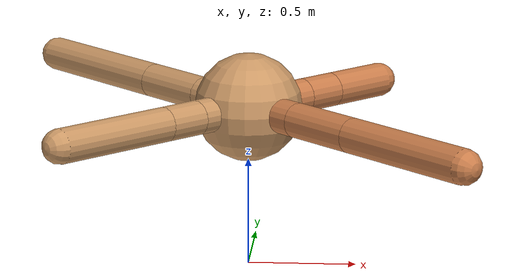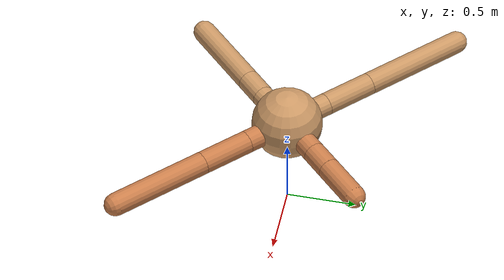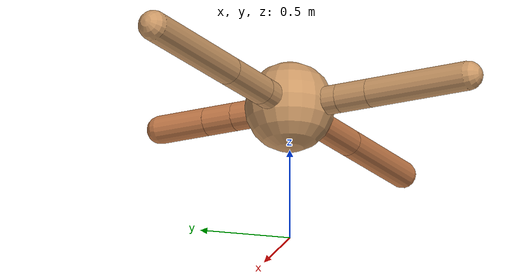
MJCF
<mujoco model="ant">
  <compiler angle="degree" coordinate="local" inertiafromgeom="true" />
  <option integrator="RK4" timestep="0.01" />
  <custom>
    <numeric data="0.0 0.0 0.55 1.0 0.0 0.0 0.0 0.0 1.0 0.0 -1.0 0.0 -1.0 0.0 1.0" name="init_qpos" />
  </custom>
  <default>
    <joint armature="1" damping="1" limited="true" />
    <geom conaffinity="0" condim="3" density="5.0" friction="1.5 0.1 0.1" margin="0.01" rgba="0.8 0.6 0.4 1" />
  </default>
  <worldbody>
    <body name="torso" pos="0 0 0.75">
      <geom name="torso_geom" pos="0 0 0" size="0.25" type="sphere" />

      <body name="front_left_leg" pos="0 0 0">
        <geom fromto="0.0 0.0 0.0 0.23877968167385336 0.23877968167385336 0.0" name="aux_1_geom" size="0.08" type="capsule" rgba=".8 .5 .3 1" />
        <body name="aux_1" pos="0.23877968167385336 0.23877968167385336 0.0">
          <joint axis="0 0 1" name="hip_1" pos="0.0 0.0 0.0" range="-40 40" type="hinge" />
          <geom fromto="0.0 0.0 0.0 0.12686233950273215 0.12686233950273215 0.0" name="left_leg_geom" size="0.08" type="capsule" rgba=".8 .5 .3 1" />
          <body pos="0.12686233950273215 0.12686233950273215 0.0" name="front_left_foot">
            <joint axis="-1 1 0" name="ankle_1" pos="0.0 0.0 0.0" range="30 100" type="hinge" />
            <geom fromto="0.0 0.0 0.0 0.21779591920244964 0.21779591920244964 0.0" name="left_ankle_geom" size="0.08" type="capsule" rgba=".8 .5 .3 1" />
          </body>
        </body>
      </body>
      <body name="front_right_leg" pos="0 0 0">
        <geom fromto="0.0 0.0 0.0 -0.2298409185227416 0.2298409185227416 0.0" name="aux_2_geom" size="0.08" type="capsule" />
        <body name="aux_2" pos="-0.2298409185227416 0.2298409185227416 0.0">
          <joint axis="0 0 1" name="hip_2" pos="0.0 0.0 0.0" range="-40 40" type="hinge" />
          <geom fromto="0.0 0.0 0.0 -0.25766902019681287 0.25766902019681287 0.0" name="right_leg_geom" size="0.08" type="capsule" />
          <body pos="-0.25766902019681287 0.25766902019681287 0.0" name="front_right_foot">
            <joint axis="1 1 0" name="ankle_2" pos="0.0 0.0 0.0" range="-100 -30" type="hinge" />
            <geom fromto="0.0 0.0 0.0 -0.5400794514735769 0.5400794514735769 0.0" name="right_ankle_geom" size="0.08" type="capsule" />
          </body>
        </body>
      </body>
      <body name="left_back_leg" pos="0 0 0">
        <geom fromto="0.0 0.0 0.0 -0.21997824215613795 -0.21997824215613795 0.0" name="aux_3_geom" size="0.08" type="capsule" />
        <body name="aux_3" pos="-0.21997824215613795 -0.21997824215613795 0.0">
          <joint axis="0 0 1" name="hip_3" pos="0.0 0.0 0.0" range="-40 40" type="hinge" />
          <geom fromto="0.0 0.0 0.0 -0.13200944998675887 -0.13200944998675887 0.0" name="back_leg_geom" size="0.08" type="capsule" />
          <body pos="-0.13200944998675887 -0.13200944998675887 0.0" name="left_back_foot">
            <joint axis="-1 1 0" name="ankle_3" pos="0.0 0.0 0.0" range="-100 -30" type="hinge" />
            <geom fromto="0.0 0.0 0.0 -0.41624085790248383 -0.41624085790248383 0.0" name="third_ankle_geom" size="0.08" type="capsule" />
          </body>
        </body>
      </body>
      <body name="right_back_leg" pos="0 0 0">
        <geom fromto="0.0 0.0 0.0 0.23572515178329692 -0.23572515178329692 0.0" name="aux_4_geom" size="0.08" type="capsule" rgba=".8 .5 .3 1" />
        <body name="aux_4" pos="0.23572515178329692 -0.23572515178329692 0.0">
          <joint axis="0 0 1" name="hip_4" pos="0.0 0.0 0.0" range="-40 40" type="hinge" />
          <geom fromto="0.0 0.0 0.0 0.2543306284977402 -0.2543306284977402 0.0" name="rightback_leg_geom" size="0.08" type="capsule" rgba=".8 .5 .3 1" />
          <body pos="0.2543306284977402 -0.2543306284977402 0.0" name="right_back_foot">
            <joint axis="1 1 0" name="ankle_4" pos="0.0 0.0 0.0" range="30 100" type="hinge" />
            <geom fromto="0.0 0.0 0.0 0.4883934649564092 -0.4883934649564092 0.0" name="fourth_ankle_geom" size="0.08" type="capsule" rgba=".8 .5 .3 1" />
          </body>
        </body>
      </body>
    </body>
  </worldbody>
  <actuator>
    <motor ctrllimited="true" ctrlrange="-1.0 1.0" joint="hip_4" gear="150" />
    <motor ctrllimited="true" ctrlrange="-1.0 1.0" joint="ankle_4" gear="150" />
    <motor ctrllimited="true" ctrlrange="-1.0 1.0" joint="hip_1" gear="150" />
    <motor ctrllimited="true" ctrlrange="-1.0 1.0" joint="ankle_1" gear="150" />
    <motor ctrllimited="true" ctrlrange="-1.0 1.0" joint="hip_2" gear="150" />
    <motor ctrllimited="true" ctrlrange="-1.0 1.0" joint="ankle_2" gear="150" />
    <motor ctrllimited="true" ctrlrange="-1.0 1.0" joint="hip_3" gear="150" />
    <motor ctrllimited="true" ctrlrange="-1.0 1.0" joint="ankle_3" gear="150" />
  </actuator>
</mujoco>
